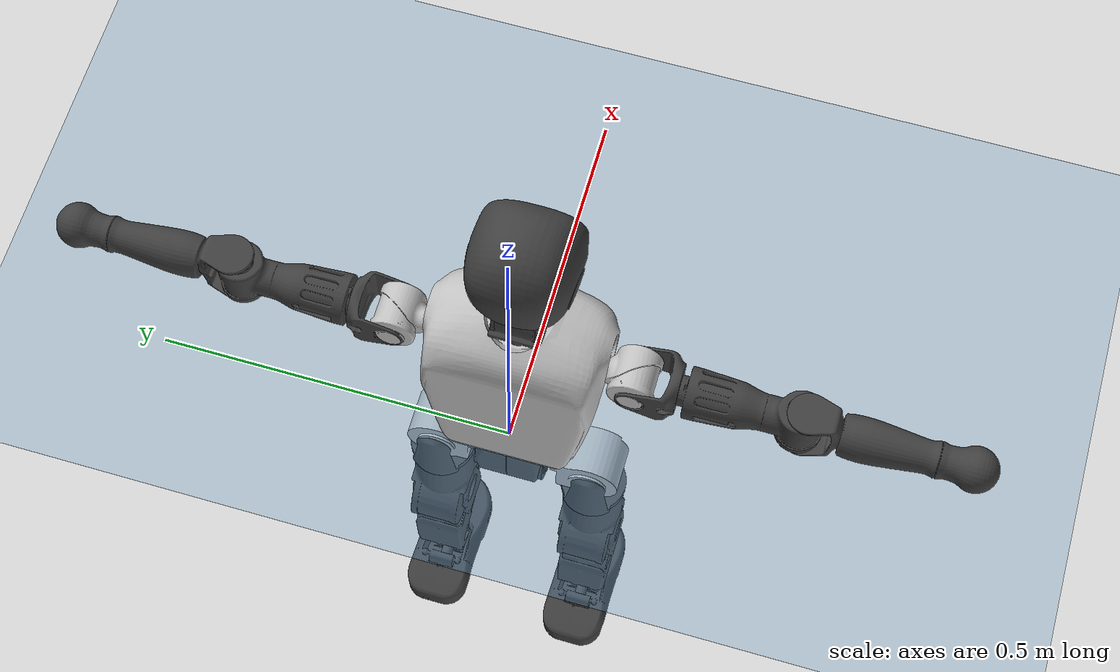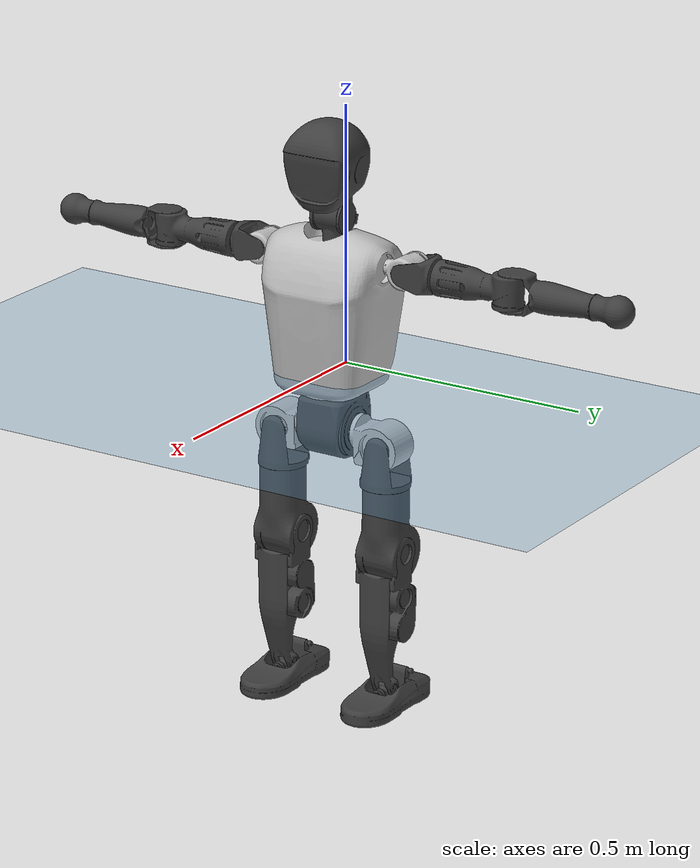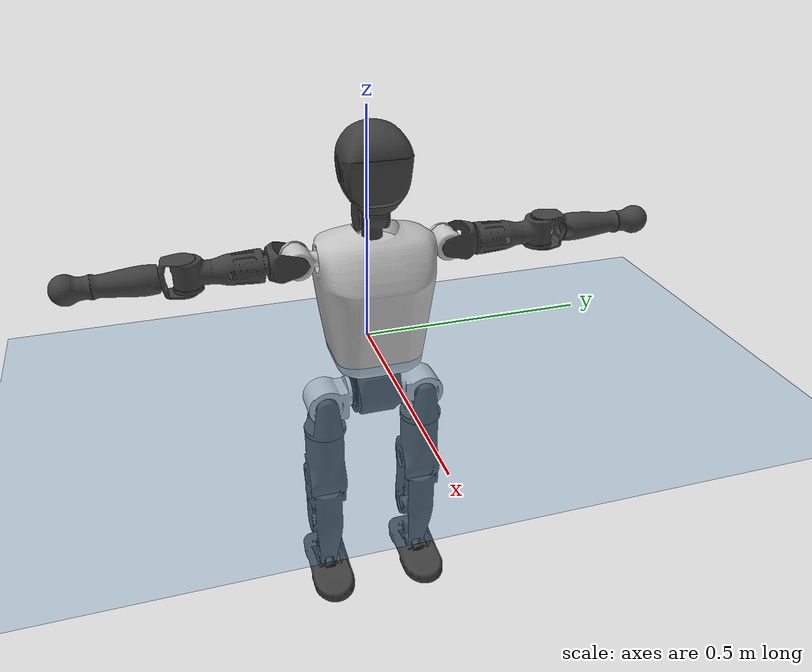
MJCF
<mujoco model="T1">
  <compiler angle="radian" assetdir="assets" balanceinertia="true" inertiafromgeom="false"/>

  <option timestep="0.005" density="1.2" viscosity="2e-05"/>

  <size nkey="1"/>

  <visual>
    <quality shadowsize="8192"/>
    <map shadowclip="0.5"/>
  </visual>

  <default>
    <default class="/">
      <joint armature="0.01" damping="0.01" frictionloss="0.1"/>
      <geom contype="0" conaffinity="0" group="1" solref="-1000 -80"/>
      <site size="0.01 0.005 0.005" group="5"/>
      <general forcelimited="true" biastype="affine" gainprm="25" biasprm="0 -25 -0.6"/>
      <default class="t1">
        <geom rgba="0.25 0.25 0.25 1"/>
        <default class="visual">
          <geom type="mesh" group="2"/>
        </default>
        <default class="collision">
          <geom group="3"/>
        </default>
        <default class="foot">
          <geom size="0.1115 0.05 0.015" type="box" condim="6" group="4" priority="1" solimp="0.015 1 0.015"/>
        </default>
        <default class="reward_collision_sphere">
          <geom group="5" rgba="1 0 0 1"/>
        </default>
      </default>
    </default>
  </default>

  <asset>
    <texture type="skybox" colorspace="auto" name="//unnamed_texture_0" builtin="gradient" rgb1="0.95 0.95 0.95" rgb2="0.95 0.95 0.95" width="100" height="600"/>
    <texture type="2d" colorspace="auto" name="texplane" builtin="checker" rgb1="0.345 0.575 0.748" rgb2="0.345 0.575 0.748" markrgb="1 1 1" width="512" height="512"/>
    <material name="MatPlane" class="/" texture="texplane" texuniform="true" texrepeat="2 2" specular="0.9"/>
    <mesh name="Trunk" class="/" file="Trunk.stl"/>
    <mesh name="H1" class="/" file="H1.stl"/>
    <mesh name="H2" class="/" file="H2.stl"/>
    <mesh name="AL1" class="/" file="AL1.stl"/>
    <mesh name="AL2" class="/" file="AL2.stl"/>
    <mesh name="AL3" class="/" file="AL3.stl"/>
    <mesh name="left_hand_link" class="/" file="left_hand_link.stl"/>
    <mesh name="AR1" class="/" file="AR1.stl"/>
    <mesh name="AR2" class="/" file="AR2.stl"/>
    <mesh name="AR3" class="/" file="AR3.stl"/>
    <mesh name="right_hand_link" class="/" file="right_hand_link.stl"/>
    <mesh name="Waist" class="/" file="Waist.stl"/>
    <mesh name="Hip_Pitch_Left" class="/" file="Hip_Pitch_Left.stl"/>
    <mesh name="Hip_Roll_Left" class="/" file="Hip_Roll_Left.stl"/>
    <mesh name="Hip_Yaw_Left" class="/" file="Hip_Yaw_Left.stl"/>
    <mesh name="Shank_Left" class="/" file="Shank_Left.stl"/>
    <mesh name="Ankle_Cross_Left" class="/" file="Ankle_Cross_Left.stl"/>
    <mesh name="left_foot_link" class="/" file="left_foot_link.stl"/>
    <mesh name="Hip_Pitch_Right" class="/" file="Hip_Pitch_Right.stl"/>
    <mesh name="Hip_Roll_Right" class="/" file="Hip_Roll_Right.stl"/>
    <mesh name="Hip_Yaw_Right" class="/" file="Hip_Yaw_Right.stl"/>
    <mesh name="Shank_Right" class="/" file="Shank_Right.stl"/>
    <mesh name="Ankle_Cross_Right" class="/" file="Ankle_Cross_Right.stl"/>
    <mesh name="right_foot_link" class="/" file="right_foot_link.stl"/>
  </asset>

  <worldbody>
    <geom name="floor" class="/" size="100 100 0.125" type="plane" group="0" material="MatPlane"/>
    <light name="toplight_shadow" class="/" pos="0 0 5" dir="0.0990148 0.0990148 -0.990148" type="directional" ambient="0.04 0.04 0.04" diffuse="0.55 0.55 0.55" specular="0.12 0.12 0.12"/>
    <light name="toplight_fill" class="/" pos="0 0 5" dir="0.0990148 0.0990148 -0.990148" type="directional" castshadow="false" ambient="0.04 0.04 0.04" diffuse="0.3 0.3 0.3" specular="0.08 0.08 0.08"/>
    <body name="trunk" childclass="t1" pos="-0.00257668 -0.00020444 0.00210219" quat="1 -0.000632063 -0.00067677 -8.07577e-05">
      <inertial pos="0.0380894 -0.00324488 0.104719" quat="0.999906 0.00913522 -0.00999851 -0.00200888" mass="9.25214" diaginertia="0.0151456 0.107619 0.0498934"/>
      <joint name="//unnamed_joint_0" type="free" armature="0" damping="0" frictionloss="0"/>
      <geom name="//unnamed_geom_1" class="visual" rgba="0.76 0.76 0.76 1" mesh="Trunk"/>
      <geom name="//unnamed_geom_2" class="collision" size="0.0682984 0.0910646 0.136597" pos="0.0415117 0 0.116777" type="box"/>
      <geom name="//unnamed_geom_3" class="reward_collision_sphere" size="0.104724" pos="0.0415117 0 0.0973141"/>
      <geom name="//unnamed_geom_4" class="reward_collision_sphere" size="0.0136597" pos="0.0415117 0.0906895 0"/>
      <geom name="//unnamed_geom_5" class="reward_collision_sphere" size="0.0136597" pos="0.0415117 -0.0906895 0"/>
      <geom name="//unnamed_geom_6" class="reward_collision_sphere" size="0.0136597" pos="0.0415117 0.114162 0.175165"/>
      <geom name="//unnamed_geom_7" class="reward_collision_sphere" size="0.0136597" pos="0.0415117 -0.114162 0.175165"/>
      <site name="imu" pos="-0.00771631 0.0045151 -0.00191217" size="0.00910646"/>
      <camera name="track" pos="0 -2.13387 0" quat="0.707107 0.707107 0 0" mode="trackcom"/>
      <camera name="ego_camera" pos="0.084407 0 0.408719" quat="-0.5 -0.5 0.5 0.5"/>
      <body name="H1" pos="0.0427278 -0.00178271 0.235255" quat="0.999999 6.28204e-05 0.000962748 -0.000354001">
        <inertial pos="0.001217 -0.00180586 0.0576368" quat="0.772879 -0.0137162 0.00411202 0.634391" mass="0.344123" diaginertia="4.0351e-05 0.000322494 0.000131621"/>
        <joint name="AAHead_yaw" pos="0 0 0" axis="-0.00521859 0.000529771 0.999986" range="-1.59866 1.60658" armature="0.0100275" damping="0.0135322" frictionloss="0.0863344"/>
        <geom name="//unnamed_geom_8" class="visual" mesh="H1"/>
        <body name="H2" pos="-0.000567329 -0.00199791 0.0591883" quat="1 -0.000479157 -0.000194841 8.6322e-05">
          <inertial pos="0.00514407 0.003193 0.0966991" quat="0.988862 0.110135 -0.0646039 -0.0764825" mass="0.472792" diaginertia="0.000320431 0.00273991 0.00151271"/>
          <joint name="Head_pitch" pos="0 0 0" axis="0.00110985 -0.999998 -0.00161995" range="-1.2583 0.394973" armature="0.00999352" damping="0.00351287" frictionloss="0.0789525"/>
          <geom name="//unnamed_geom_9" class="visual" mesh="H2"/>
          <geom name="//unnamed_geom_10" class="collision" size="0.0728516" pos="0.00691861 0 0.107045"/>
          <geom name="//unnamed_geom_11" class="reward_collision_sphere" size="0.0819581" pos="0.0138372 0 0.0973141"/>
        </body>
      </body>
      <body name="AL1" pos="0.0381878 0.11236 0.2152" quat="0.999999 -0.000896836 -0.000659474 0.000244698">
        <inertial pos="0.00061977 0.0503305 0.00198263" quat="0.50301 0.493334 -0.510618 0.49282" mass="0.38395" diaginertia="0.00020909 0.00169963 0.000238885"/>
        <joint name="Left_Shoulder_Pitch" pos="0 0 0" axis="0.0021961 0.999996 -0.00152004" stiffness="0.0124206" range="-3.31983 1.17017" armature="0.00785182" damping="0.000526339" frictionloss="0.0976559"/>
        <geom name="//unnamed_geom_12" class="visual" rgba="0.76 0.76 0.76 1" mesh="AL1"/>
        <body name="AL2" pos="-0.00121469 0.0502267 -9.90447e-05" quat="0.999998 0.0011265 0.00117362 -0.000807289">
          <inertial pos="0.00243166 0.0434245 -0.000125731" quat="0.487167 0.51285 -0.489052 0.510374" mass="0.122134" diaginertia="6.30359e-05 0.000465715 0.000155721"/>
          <joint name="Left_Shoulder_Roll" pos="0 0 0" axis="-0.999923 -0.00771555 0.00969421" stiffness="0.0149992" range="-1.59681 1.68976" armature="0.00782932" damping="0.0194593" frictionloss="0.0864556"/>
          <geom name="//unnamed_geom_13" class="visual" mesh="AL2"/>
          <body name="AL3" pos="0.00150528 0.0619718 -0.000691055" quat="1 0.000198839 -0.000440975 -0.000673602">
            <inertial pos="0.000347672 0.0912389 -0.00292864" quat="0.706656 0.70749 -0.000600701 -0.00968274" mass="0.719359" diaginertia="0.00196407 0.0171212 0.00054337"/>
            <joint name="Left_Elbow_Pitch" pos="0 0 0" axis="0.000687517 -0.999999 -0.000753963" stiffness="0.000437709" range="-2.33199 2.31287" armature="0.00845343" damping="0.0133524" frictionloss="0.093892"/>
            <geom name="//unnamed_geom_14" class="visual" mesh="AL3"/>
            <geom name="//unnamed_geom_15" class="collision" size="0.0273194 0.0682984" pos="0 0.0533467 0" quat="0.707105 0.707108 0 0" type="cylinder"/>
            <geom name="//unnamed_geom_16" class="reward_collision_sphere" size="0.0327832"/>
            <body name="left_hand_link" pos="0.002501 0.15774 0.00221366" quat="1 -0.000465933 -0.000145861 -0.000413765">
              <inertial pos="-0.000262628 0.115804 0.000276317" quat="0.710446 0.703729 -0.00233545 -0.00522666" mass="0.253924" diaginertia="0.00133496 0.0110233 0.000193604"/>
              <joint name="Left_Elbow_Yaw" pos="0 0 0" axis="-0.0014142 0.0105173 0.999944" stiffness="0.000588504" range="-2.43271 -0.0167225" armature="0.00792132" damping="0.00923495" frictionloss="0.0995034"/>
              <geom name="//unnamed_geom_17" class="visual" mesh="left_hand_link"/>
              <geom name="//unnamed_geom_18" class="collision" size="0.0273194 0.0796815" pos="0 0.138702 0" quat="0.707105 0.707108 0 0" type="cylinder"/>
              <geom name="//unnamed_geom_19" class="reward_collision_sphere" size="0.0455323"/>
              <geom name="//unnamed_geom_20" class="reward_collision_sphere" size="0.0318726" pos="0 0.117363 0"/>
              <geom name="//unnamed_geom_21" class="reward_collision_sphere" size="0.0318726" pos="0 0.229391 0"/>
            </body>
          </body>
        </body>
      </body>
      <body name="AR1" pos="0.039027 -0.109468 0.211847" quat="0.999999 0.000628605 0.00085783 0.000691471">
        <inertial pos="-0.0016551 -0.0469607 -0.00132481" quat="0.50292 0.497352 -0.503564 0.496122" mass="0.40038" diaginertia="0.000221748 0.00180674 0.000264845"/>
        <joint name="Right_Shoulder_Pitch" pos="0 0 0" axis="0.00277772 -0.999996 -0.000852448" stiffness="0.00730458" range="-1.27803 3.3053" armature="0.0083668" damping="0.0193962" frictionloss="0.101454"/>
        <geom name="//unnamed_geom_22" class="visual" rgba="0.76 0.76 0.76 1" mesh="AR1"/>
        <body name="AR2" pos="-0.00239159 -0.0497777 0.00105449" quat="1 -0.000101506 -6.89386e-05 -2.46202e-05">
          <inertial pos="0.00124954 -0.0404761 0.00189969" quat="0.514667 0.492084 -0.503274 0.489577" mass="0.128164" diaginertia="6.46672e-05 0.000503798 0.000160046"/>
          <joint name="Right_Shoulder_Roll" pos="0 0 0" axis="-0.999994 -0.00306664 -0.00179798" range="-1.79071 1.55474" armature="0.00899969" damping="0.00913339" frictionloss="0.0915882"/>
          <geom name="//unnamed_geom_23" class="visual" mesh="AR2"/>
          <body name="AR3" pos="0.00069767 -0.065473 -0.00237408" quat="1 -0.000352786 0.000275527 -0.000297839">
            <inertial pos="0.00247558 -0.0931162 -0.00155085" quat="0.70988 0.704318 -0.00166876 -0.00184661" mass="0.799307" diaginertia="0.00212622 0.018511 0.000574284"/>
            <joint name="Right_Elbow_Pitch" pos="0 0 0" axis="-0.0118534 0.999914 0.0055488" range="-2.26642 2.26569" armature="0.00844188" damping="0.00721251" frictionloss="0.0963903"/>
            <geom name="//unnamed_geom_24" class="visual" mesh="AR3"/>
            <geom name="//unnamed_geom_25" class="collision" size="0.0273194 0.0682984" pos="0 -0.0533467 0" quat="0.707105 0.707108 0 0" type="cylinder"/>
            <geom name="//unnamed_geom_26" class="reward_collision_sphere" size="0.0327832"/>
            <body name="right_hand_link" pos="-0.000910485 -0.155623 -0.00233835" quat="1 5.41634e-05 0.000674311 0.000470655">
              <inertial pos="-0.00228631 -0.117037 0.00313929" quat="0.70249 0.711628 -0.00674881 0.00686129" mass="0.23633" diaginertia="0.00131176 0.011226 0.000191713"/>
              <joint name="Right_Elbow_Yaw" pos="0 0 0" axis="0.000321544 0.00599214 0.999982" stiffness="0.00841634" range="0.0256675 2.39375" armature="0.00823423" damping="0" frictionloss="0.103073"/>
              <geom name="//unnamed_geom_27" class="visual" mesh="right_hand_link"/>
              <geom name="//unnamed_geom_28" class="collision" size="0.0273194 0.0796815" pos="0 -0.138702 0" quat="0.707105 0.707108 0 0" type="cylinder"/>
              <geom name="//unnamed_geom_29" class="reward_collision_sphere" size="0.0455323"/>
              <geom name="//unnamed_geom_30" class="reward_collision_sphere" size="0.0318726" pos="0 -0.117363 0"/>
              <geom name="//unnamed_geom_31" class="reward_collision_sphere" size="0.0318726" pos="0 -0.229391 0"/>
            </body>
          </body>
        </body>
      </body>
      <body name="Waist" pos="0.0462959 0.00127774 -0.110395" quat="0.999999 4.63744e-06 -0.00113719 -0.000283658">
        <inertial pos="0.00446712 -0.00147652 0.00934937" quat="0.98287 0.00559397 -0.184133 -0.00554942" mass="1.91284" diaginertia="0.000849932 0.00726778 0.00417681"/>
        <joint name="Waist" pos="0 0 0" axis="0.000266457 0.00233295 0.999997" stiffness="0.0190268" range="-1.56221 1.56257" armature="0.0102469" damping="0.00317182" frictionloss="0.0922819"/>
        <geom name="//unnamed_geom_32" class="visual" mesh="Waist"/>
        <body name="Hip_Pitch_Left" pos="0.000117594 0.111697 -0.00290427" quat="0.999999 -0.00115674 -0.000700735 0.0008365">
          <inertial pos="-0.00163975 -0.00558951 -0.0167298" quat="0.976737 0.214353 0.00610735 -7.68356e-05" mass="0.781771" diaginertia="0.00028602 0.0019925 0.00112855"/>
          <joint name="Left_Hip_Pitch" pos="0 0 0" axis="-0.0158886 0.999873 -0.000888149" range="-1.78395 1.54867" armature="0.00876615" damping="0.0120176" frictionloss="0.082092"/>
          <geom name="//unnamed_geom_33" class="visual" rgba="0.76 0.76 0.76 1" mesh="Hip_Pitch_Left"/>
          <body name="Hip_Roll_Left" pos="-0.00228486 0.00246149 -0.0208755" quat="0.999999 0.000557576 -0.000434013 -0.00127599">
            <inertial pos="-0.000569935 5.12907e-06 -0.0515062" quat="0.710424 -0.00480745 -0.00545936 0.703736" mass="0.313364" diaginertia="0.000279928 0.00217715 0.000469689"/>
            <joint name="Left_Hip_Roll" pos="0 0 0" axis="-0.999936 0.0111833 0.00166512" range="-1.55007 0.250082" armature="0.00895867" damping="0.0172999" frictionloss="0.0865271"/>
            <geom name="//unnamed_geom_34" class="visual" mesh="Hip_Roll_Left"/>
            <geom name="//unnamed_geom_35" class="reward_collision_sphere" size="0.0500855"/>
            <body name="Hip_Yaw_Left" pos="-0.00191247 0.000128393 -0.0796069" quat="1 -0.000206592 -0.000402083 0.000465072">
              <inertial pos="-0.00373598 0.000440357 -0.0882612" quat="0.694937 -0.0252407 -0.0333167 0.717855" mass="1.58436" diaginertia="0.00394861 0.0347888 0.00212504"/>
              <joint name="Left_Hip_Yaw" pos="0 0 0" axis="0.00539305 0.00301994 -0.999981" range="-0.96086 0.996718" armature="0.00871413" damping="0.0145588" frictionloss="0.0872707"/>
              <geom name="//unnamed_geom_36" class="visual" mesh="Hip_Yaw_Left"/>
              <geom name="//unnamed_geom_37" class="collision" size="0.0455323 0.0728516" type="cylinder"/>
              <body name="Shank_Left" pos="-0.00807738 -0.00126976 -0.130172" quat="1 0.000242895 -0.000286556 -0.000250623">
                <inertial pos="-0.00174322 0.00242915 -0.121363" quat="0.997384 0.0062185 -0.0203604 0.0690783" mass="1.30348" diaginertia="0.00531249 0.0478338 0.00157018"/>
                <joint name="Left_Knee_Pitch" pos="0 0 0" axis="0.0075323 0.999952 0.00628497" range="0.0414075 2.35144" armature="0.0104138" damping="0.0195554" frictionloss="0.0752838"/>
                <geom name="//unnamed_geom_38" class="visual" mesh="Shank_Left"/>
                <geom name="//unnamed_geom_39" class="collision" size="0.0455323 0.0682984" pos="0 0 -0.116777" type="cylinder"/>
                <geom name="//unnamed_geom_40" class="reward_collision_sphere" size="0.059192"/>
                <body name="Ankle_Cross_Left" pos="0.00303113 0.00217309 -0.273938" quat="1 0.000189493 -2.43003e-05 -0.000340214">
                  <inertial pos="-0.00255803 -0.000183929 -0.00592906" quat="0.449278 0.543677 0.553927 0.442413" mass="0.0565072" diaginertia="4.80273e-06 3.80286e-05 1.01265e-05"/>
                  <joint name="Left_Ankle_Pitch" pos="0 0 0" axis="0.00334278 0.999941 0.0103201" stiffness="0.0123139" range="-0.924968 0.298031" armature="0.00912577" damping="0.0143618" frictionloss="0.080366"/>
                  <geom name="//unnamed_geom_41" class="visual" mesh="Ankle_Cross_Left"/>
                  <body name="left_foot_link" pos="-0.000914957 0.00176531 -0.0124117" quat="0.999999 -5.1641e-06 -0.000923978 -0.000752081">
                    <inertial pos="-0.00152302 -0.000942594 -0.0114378" quat="1.66235e-05 0.620533 -0.000207315 0.78418" mass="0.528463" diaginertia="0.000436401 0.00340626 0.0019538"/>
                    <joint name="Left_Ankle_Roll" pos="0 0 0" axis="-0.999861 0.0161677 0.00412742" range="-0.41698 0.399663" armature="0.00920433" damping="0.00339178" frictionloss="0.103147"/>
                    <geom name="//unnamed_geom_42" class="visual" mesh="left_foot_link"/>
                    <geom name="left_foot" class="foot" size="0.101117 0.041546 0.0153001" pos="0.00691861 0 -0.0145971"/>
                    <geom name="//unnamed_geom_44" class="reward_collision_sphere" size="0.0473536" pos="0.00691861 0 -0.0145971"/>
                    <geom name="//unnamed_geom_45" class="reward_collision_sphere" size="0.0273194" pos="0.0657268 -0.0245395 -0.0145971"/>
                    <geom name="//unnamed_geom_46" class="reward_collision_sphere" size="0.0273194" pos="-0.0484303 -0.0245395 -0.0145971"/>
                    <site name="left_foot" class="foot" pos="0.00691861 0 -0.0145971" size="0.00910646"/>
                  </body>
                </body>
              </body>
            </body>
          </body>
        </body>
        <body name="Hip_Pitch_Right" pos="-0.000624964 -0.11211 -0.0019867" quat="1 -0.000527415 0.000303657 -0.000431441">
          <inertial pos="-0.0016003 0.00532374 -0.0174316" quat="0.973313 -0.228955 0.0148491 -0.00451428" mass="0.757489" diaginertia="0.000295474 0.00208001 0.00108009"/>
          <joint name="Right_Hip_Pitch" pos="0 0 0" axis="0.0118817 -0.999886 0.00932439" range="-1.56867 1.78684" armature="0.00893363" damping="0.00370105" frictionloss="0.0951218"/>
          <geom name="//unnamed_geom_47" class="visual" rgba="0.76 0.76 0.76 1" mesh="Hip_Pitch_Right"/>
          <body name="Hip_Roll_Right" pos="-0.000640396 -0.00281562 -0.0215916" quat="1 0.000363094 -0.000384448 -0.000104368">
            <inertial pos="0.00140143 -0.00224186 -0.0525811" quat="0.71403 -0.00494776 -0.00132315 0.700096" mass="0.290074" diaginertia="0.0002805 0.0021131 0.000436732"/>
            <joint name="Right_Hip_Roll" pos="0 0 0" axis="-0.999989 -0.00117693 0.00447911" stiffness="0.00268906" range="-0.236127 1.52534" armature="0.010155" damping="0.013736" frictionloss="0.0812342"/>
            <geom name="//unnamed_geom_48" class="visual" mesh="Hip_Roll_Right"/>
            <geom name="//unnamed_geom_49" class="reward_collision_sphere" size="0.0500855"/>
            <body name="Hip_Yaw_Right" pos="-0.00147851 -0.00161153 -0.079607" quat="1 0.000231971 1.32392e-05 2.42732e-05">
              <inertial pos="-0.00504516 0.000479347 -0.0888642" quat="0.709446 -0.039624 -0.0335204 0.702846" mass="1.5872" diaginertia="0.00400701 0.0345887 0.0022421"/>
              <joint name="Right_Hip_Yaw" pos="0 0 0" axis="-0.000462725 0.000487028 -1" range="-1.04475 0.995565" armature="0.010139" damping="0" frictionloss="0.0813672"/>
              <geom name="//unnamed_geom_50" class="visual" mesh="Hip_Yaw_Right"/>
              <geom name="//unnamed_geom_51" class="collision" size="0.0455323 0.0728516" type="cylinder"/>
              <body name="Shank_Right" pos="-0.0111783 -0.00211783 -0.133076" quat="1 0.000307794 0.000181355 3.48507e-05">
                <inertial pos="-0.00644804 -0.00352292 -0.116748" quat="0.999128 -0.00207231 -0.0264534 -0.0322374" mass="1.30946" diaginertia="0.00518132 0.0453449 0.00162445"/>
                <joint name="Right_Knee_Pitch" pos="0 0 0" axis="-0.00954199 -0.999924 -0.00786271" range="-2.34745 -0.00848717" armature="0.0102678" damping="0.0136073" frictionloss="0.101729"/>
                <geom name="//unnamed_geom_52" class="visual" mesh="Shank_Right"/>
                <geom name="//unnamed_geom_53" class="collision" size="0.0455323 0.0682984" pos="0 0 -0.116777" type="cylinder"/>
                <geom name="//unnamed_geom_54" class="reward_collision_sphere" size="0.059192"/>
                <body name="Ankle_Cross_Right" pos="0.00207654 0.00230549 -0.27208" quat="0.999999 0.000680052 0.000521255 -0.00103235">
                  <inertial pos="6.815e-05 0.00197833 -0.0071321" quat="0.449125 0.555676 0.543505 0.440583" mass="0.0547004" diaginertia="4.63391e-06 3.50295e-05 9.65441e-06"/>
                  <joint name="Right_Ankle_Pitch" pos="0 0 0" axis="-0.0144979 -0.999876 0.00620107" range="-0.404902 0.865494" armature="0.0101847" damping="0.0164311" frictionloss="0.103234"/>
                  <geom name="//unnamed_geom_55" class="visual" mesh="Ankle_Cross_Right"/>
                  <body name="right_foot_link" pos="-0.00155825 -0.00059 -0.0111968" quat="1 -8.83616e-05 9.94083e-05 -3.37564e-06">
                    <inertial pos="-0.00233947 0.000674892 -0.00743083" quat="0.00264039 0.620655 -0.000369741 0.784079" mass="0.523406" diaginertia="0.000412801 0.00330208 0.00186227"/>
                    <joint name="Right_Ankle_Roll" pos="0 0 0" axis="-1 -3.01758e-05 5.38783e-06" range="-0.432559 0.386562" armature="0.0103766" damping="0.0132704" frictionloss="0.0980622"/>
                    <geom name="//unnamed_geom_56" class="visual" mesh="right_foot_link"/>
                    <geom name="right_foot" class="foot" size="0.10139 0.0405785 0.0129152" pos="0.00691861 0 -0.0145971"/>
                    <geom name="//unnamed_geom_58" class="reward_collision_sphere" size="0.0364258"/>
                    <geom name="//unnamed_geom_59" class="reward_collision_sphere" size="0.0273194" pos="0.00691861 0 -0.0145971"/>
                    <geom name="//unnamed_geom_60" class="reward_collision_sphere" size="0.0273194" pos="0.0657268 0.0245395 -0.0145971"/>
                    <geom name="//unnamed_geom_61" class="reward_collision_sphere" size="0.0273194" pos="-0.0484303 0.0245395 -0.0145971"/>
                    <site name="right_foot" class="foot" pos="0.00691861 0 -0.0145971" size="0.00910646"/>
                  </body>
                </body>
              </body>
            </body>
          </body>
        </body>
      </body>
    </body>
  </worldbody>

  <contact>
    <pair class="/" geom1="floor" geom2="left_foot" name="//unnamed_contact_0"/>
    <pair class="/" geom1="floor" geom2="right_foot" name="//unnamed_contact_1"/>
  </contact>

  <actuator>
    <general name="AAHead_yaw" class="/" joint="AAHead_yaw" forcerange="-6.56092 6.56092" gainprm="21.2108" biasprm="0 -21.2108 -0.56414"/>
    <general name="Head_pitch" class="/" joint="Head_pitch" forcerange="-7.01343 7.01343" gainprm="21.2108" biasprm="0 -21.2108 -0.56414"/>
    <general name="Left_Shoulder_Pitch" class="/" joint="Left_Shoulder_Pitch" forcerange="-15.9081 15.9081" gainprm="21.2108" biasprm="0 -21.2108 -0.56414"/>
    <general name="Left_Shoulder_Roll" class="/" joint="Left_Shoulder_Roll" forcerange="-17.8436 17.8436" gainprm="21.2108" biasprm="0 -21.2108 -0.56414"/>
    <general name="Left_Elbow_Pitch" class="/" joint="Left_Elbow_Pitch" forcerange="-16.6688 16.6688" gainprm="21.2108" biasprm="0 -21.2108 -0.56414"/>
    <general name="Left_Elbow_Yaw" class="/" joint="Left_Elbow_Yaw" forcerange="-14.8785 14.8785" gainprm="21.2108" biasprm="0 -21.2108 -0.56414"/>
    <general name="Right_Shoulder_Pitch" class="/" joint="Right_Shoulder_Pitch" forcerange="-16.4988 16.4988" gainprm="21.2108" biasprm="0 -21.2108 -0.56414"/>
    <general name="Right_Shoulder_Roll" class="/" joint="Right_Shoulder_Roll" forcerange="-16.6328 16.6328" gainprm="21.2108" biasprm="0 -21.2108 -0.56414"/>
    <general name="Right_Elbow_Pitch" class="/" joint="Right_Elbow_Pitch" forcerange="-17.426 17.426" gainprm="21.2108" biasprm="0 -21.2108 -0.56414"/>
    <general name="Right_Elbow_Yaw" class="/" joint="Right_Elbow_Yaw" forcerange="-15.9337 15.9337" gainprm="21.2108" biasprm="0 -21.2108 -0.56414"/>
    <general name="Waist" class="/" joint="Waist" forcerange="-27.3144 27.3144" gainprm="21.2108" biasprm="0 -21.2108 -0.56414"/>
    <general name="Left_Hip_Pitch" class="/" joint="Left_Hip_Pitch" forcerange="-43.7045 43.7045" gainprm="21.2108" biasprm="0 -21.2108 -0.56414"/>
    <general name="Left_Hip_Roll" class="/" joint="Left_Hip_Roll" forcerange="-25.7497 25.7497" gainprm="21.2108" biasprm="0 -21.2108 -0.56414"/>
    <general name="Left_Hip_Yaw" class="/" joint="Left_Hip_Yaw" forcerange="-30.1348 30.1348" gainprm="21.2108" biasprm="0 -21.2108 -0.56414"/>
    <general name="Left_Knee_Pitch" class="/" joint="Left_Knee_Pitch" forcerange="-53.9206 53.9206" gainprm="21.2108" biasprm="0 -21.2108 -0.56414"/>
    <general name="Left_Ankle_Pitch" class="/" joint="Left_Ankle_Pitch" forcerange="-20.0019 20.0019" gainprm="21.2108" biasprm="0 -21.2108 -0.56414"/>
    <general name="Left_Ankle_Roll" class="/" joint="Left_Ankle_Roll" forcerange="-13.6853 13.6853" gainprm="21.2108" biasprm="0 -21.2108 -0.56414"/>
    <general name="Right_Hip_Pitch" class="/" joint="Right_Hip_Pitch" forcerange="-40.8 40.8" gainprm="21.2108" biasprm="0 -21.2108 -0.56414"/>
    <general name="Right_Hip_Roll" class="/" joint="Right_Hip_Roll" forcerange="-26.9874 26.9874" gainprm="21.2108" biasprm="0 -21.2108 -0.56414"/>
    <general name="Right_Hip_Yaw" class="/" joint="Right_Hip_Yaw" forcerange="-26.9578 26.9578" gainprm="21.2108" biasprm="0 -21.2108 -0.56414"/>
    <general name="Right_Knee_Pitch" class="/" joint="Right_Knee_Pitch" forcerange="-49.8383 49.8383" gainprm="21.2108" biasprm="0 -21.2108 -0.56414"/>
    <general name="Right_Ankle_Pitch" class="/" joint="Right_Ankle_Pitch" forcerange="-17.8971 17.8971" gainprm="21.2108" biasprm="0 -21.2108 -0.56414"/>
    <general name="Right_Ankle_Roll" class="/" joint="Right_Ankle_Roll" forcerange="-14.5649 14.5649" gainprm="21.2108" biasprm="0 -21.2108 -0.56414"/>
  </actuator>

  <sensor>
    <gyro site="imu" name="imu_angular_velocity"/>
    <velocimeter site="imu" name="imu_linear_velocity"/>
    <framelinvel objtype="site" objname="left_foot" name="left_foot_global_linear_velocity"/>
    <framelinvel objtype="site" objname="right_foot" name="right_foot_global_linear_velocity"/>
  </sensor>

  <keyframe>
    <key name="home" qpos="0 0 0.6385 1 0 0 0 0 0 0 1.4 0 -0.4 0 -1.4 0 0.4 0 -0.4 0 0 0.8 -0.4 0 0.4 0 0 -0.8 0.4 0"/>
  </keyframe>
</mujoco>
